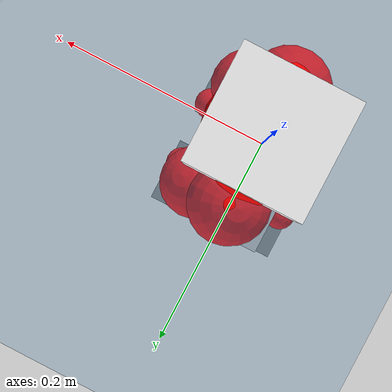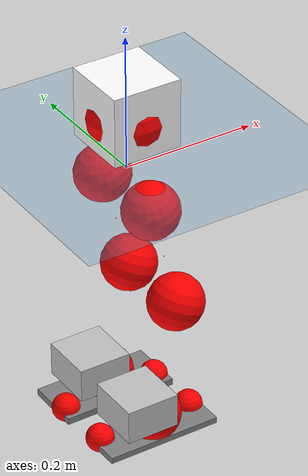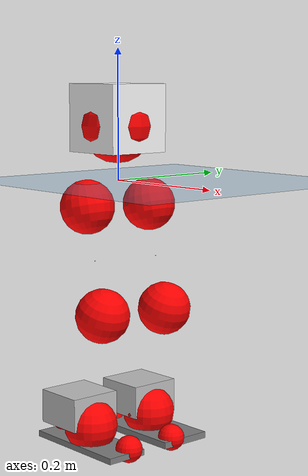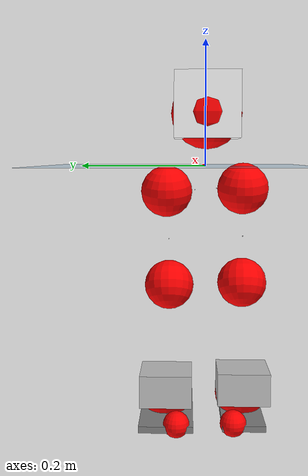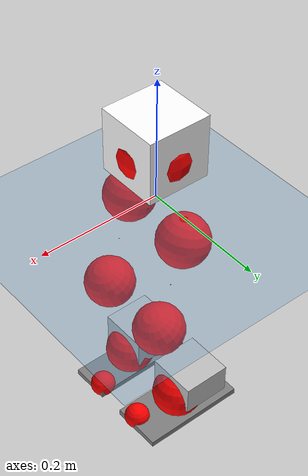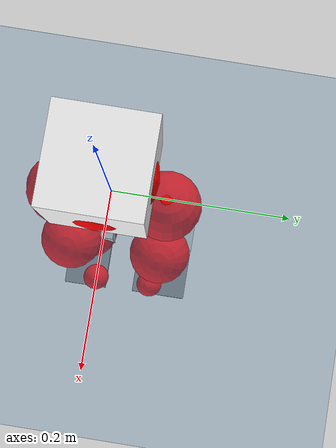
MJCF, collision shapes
<mujoco model="pi_12dof_release_v1">
  <compiler angle="radian" assetdir="assets" balanceinertia="true" inertiafromgeom="false"/>

  <option timestep="0.005" density="1.2" viscosity="2e-05"/>

  <size nkey="1"/>

  <visual>
    <quality shadowsize="8192"/>
    <map shadowclip="0.5"/>
  </visual>

  <default>
    <default class="/">
      <joint armature="0.01" damping="0.01" frictionloss="0.01"/>
      <geom contype="0" conaffinity="0" group="1" solref="-1000 -80"/>
      <site size="0.01 0.005 0.005" group="5"/>
      <general forcelimited="true" biastype="affine" gainprm="20" biasprm="0 -20 -0.5"/>
      <default class="foot">
        <geom size="0.0845 0.036 0.005" type="box" condim="6" group="4" priority="1" friction="0.9 0.2 0.2" solimp="0.015 1 0.005"/>
      </default>
      <default class="reward_collision_sphere">
        <geom group="5" rgba="1 0 0 1"/>
      </default>
    </default>
  </default>

  <asset>
    <texture type="skybox" colorspace="auto" name="//unnamed_texture_0" builtin="gradient" rgb1="0.95 0.95 0.95" rgb2="0.95 0.95 0.95" width="100" height="600"/>
    <texture type="2d" colorspace="auto" name="texplane" builtin="checker" rgb1="0.345 0.575 0.748" rgb2="0.345 0.575 0.748" markrgb="1 1 1" width="512" height="512"/>
    <material name="MatPlane" class="/" texture="texplane" texuniform="true" texrepeat="2 2" specular="0.9"/>
    <mesh name="baselink_1" class="/" file="baselink_1.STL"/>
    <mesh name="r_hip_pitch_link" class="/" file="r_hip_pitch_link.STL"/>
    <mesh name="r_hip_roll_link" class="/" file="r_hip_roll_link.STL"/>
    <mesh name="r_thigh_link" class="/" file="r_thigh_link.STL"/>
    <mesh name="r_calf_link" class="/" file="r_calf_link.STL"/>
    <mesh name="r_ankle_pitch_link" class="/" file="r_ankle_pitch_link.STL"/>
    <mesh name="r_ankle_roll_link" class="/" file="r_ankle_roll_link.STL"/>
    <mesh name="l_hip_pitch_link" class="/" file="l_hip_pitch_link.STL"/>
    <mesh name="l_hip_roll_link" class="/" file="l_hip_roll_link.STL"/>
    <mesh name="l_thigh_link" class="/" file="l_thigh_link.STL"/>
    <mesh name="l_calf_link" class="/" file="l_calf_link.STL"/>
    <mesh name="l_ankle_pitch_link" class="/" file="l_ankle_pitch_link.STL"/>
    <mesh name="l_ankle_roll_link" class="/" file="l_ankle_roll_link.STL"/>
  </asset>

  <worldbody>
    <geom name="floor" class="/" size="100 100 0.125" type="plane" group="0" material="MatPlane"/>
    <light name="toplight_shadow" class="/" pos="0 0 5" dir="0.0990148 0.0990148 -0.990148" type="directional" ambient="0.04 0.04 0.04" diffuse="0.55 0.55 0.55" specular="0.12 0.12 0.12"/>
    <light name="toplight_fill" class="/" pos="0 0 5" dir="0.0990148 0.0990148 -0.990148" type="directional" castshadow="false" ambient="0.04 0.04 0.04" diffuse="0.3 0.3 0.3" specular="0.08 0.08 0.08"/>
    <body name="trunk" pos="0.0002099 -0.00199309 0.000327364" quat="1 2.77627e-05 -7.99846e-06 8.41373e-06">
      <inertial pos="0.00160866 -0.00283969 0.0478792" quat="0.702432 0.0114128 0.0175816 0.711443" mass="2.36641" diaginertia="0.0159115 0.003237 0.00976398"/>
      <joint name="//unnamed_joint_0" type="free"/>
      <geom name="//unnamed_geom_1" class="/" type="mesh" density="0" rgba="1 1 1 1" mesh="baselink_1"/>
      <geom name="//unnamed_geom_2" class="/" size="0.0517644 0.0517644 0.0517644" pos="0 0 0.0949522" type="box" rgba="1 1 1 1"/>
      <geom name="//unnamed_geom_3" class="reward_collision_sphere" size="0.0569408" pos="0 0 0.0830832"/>
      <site name="imu" class="/" pos="0.00928119 0.00309757 -0.00992126" size="0.0103529"/>
      <camera name="track" class="/" pos="0 -1.63301 0" quat="0.707107 0.707107 0 0" mode="trackcom"/>
      <camera name="ego_camera" class="/" pos="0.0826842 0 0.213643" quat="-0.5 -0.5 0.5 0.5"/>
      <body name="r_hip_pitch_link" pos="0.000624047 -0.0159935 -0.0366028" quat="0.992282 -7.91371e-05 -0.123999 0.000713821">
        <inertial pos="0.000899927 -0.0453325 0.000692087" quat="-0.0193483 0.705596 -0.0286714 0.707769" mass="0.399473" diaginertia="0.000176536 3.44086e-05 0.000196596"/>
        <joint name="r_hip_pitch_joint" class="/" pos="0 0 0" axis="-0.00521983 -0.999975 0.00486319" stiffness="0.000616794" range="-1.75296 1.23811" armature="0.010419" damping="0.0135827" frictionloss="0.0108972"/>
        <geom name="//unnamed_geom_4" class="/" type="mesh" density="0" rgba="0.75294 0.75294 0.75294 1" mesh="r_hip_pitch_link"/>
        <geom name="//unnamed_geom_5" class="/" size="0.000517644 0.000517644 0.000517644" type="box" rgba="0.75294 0.75294 0.75294 1"/>
        <body name="r_hip_roll_link" pos="-0.000627526 -0.0430378 -0.000239482" quat="1 0.000122727 0.000101149 0.000866575">
          <inertial pos="0.000671865 0.000708601 -0.0729813" quat="0.698371 -0.0745078 -0.081167 0.707205" mass="0.431274" diaginertia="0.000549625 0.000101805 0.000308484"/>
          <joint name="r_hip_roll_joint" class="/" pos="0 0 0" axis="-0.999986 0.00306907 0.00431358" stiffness="0.00112507" range="-0.120034 0.541218" armature="0.00960676" damping="0.00924133" frictionloss="0.0100764"/>
          <geom name="//unnamed_geom_6" class="/" type="mesh" density="0" rgba="0.75294 0.75294 0.75294 1" mesh="r_hip_roll_link"/>
          <geom name="//unnamed_geom_7" class="/" size="0.000517644 0.000517644 0.000517644" type="box" rgba="0.75294 0.75294 0.75294 1"/>
          <geom name="//unnamed_geom_8" class="reward_collision_sphere" size="0.0414115"/>
          <body name="r_thigh_link" pos="-0.000346438 -0.00200298 -0.0820623" quat="1 0.000264297 -7.05444e-06 0.000279728">
            <inertial pos="0.00201235 0.000634005 -0.0589979" quat="0.737804 0.675015 -0.000198788 0.000275391" mass="0.124815" diaginertia="0.000197991 3.53758e-05 0.000131427"/>
            <joint name="r_thigh_joint" class="/" pos="0 0 0" axis="-0.00524786 0.000694712 -0.999986" range="-0.332258 0.598975" armature="0.010567" damping="0.00650384" frictionloss="0.0102079"/>
            <geom name="//unnamed_geom_9" class="/" type="mesh" density="0" rgba="0.75294 0.75294 0.75294 1" mesh="r_thigh_link"/>
            <geom name="//unnamed_geom_10" class="/" size="0.000517644 0.000517644 0.000517644" type="box" rgba="0.75294 0.75294 0.75294 1"/>
            <body name="r_calf_link" pos="-0.00157076 -0.00111624 -0.0834328" quat="0.94766 -0.000101746 0.319281 -6.07778e-06">
              <inertial pos="0.000107545 -0.00184049 -0.0838724" quat="0.999975 -0.00413263 0.00266264 0.00514574" mass="0.879388" diaginertia="0.005835 0.00123441 0.000424101"/>
              <joint name="r_calf_joint" class="/" pos="0 0 0" axis="-0.00100446 -0.999993 0.00361284" range="-1.59838 0.654548" armature="0.0109097" damping="0.0103046" frictionloss="0.0104176"/>
              <geom name="//unnamed_geom_11" class="/" type="mesh" density="0" rgba="0.75294 0.75294 0.75294 1" mesh="r_calf_link"/>
              <geom name="//unnamed_geom_12" class="/" size="0.000517644 0.000517644 0.000517644" type="box" rgba="0.75294 0.75294 0.75294 1"/>
              <geom name="//unnamed_geom_13" class="reward_collision_sphere" size="0.0414115"/>
              <body name="r_ankle_pitch_link" pos="0.00318031 0.00299324 -0.165805" quat="0.980052 7.02012e-05 -0.198742 0.000109371">
                <inertial pos="0.00498085 0.000326861 -0.000619632" quat="0.00396997 0.707598 0.0017013 0.706602" mass="0.204781" diaginertia="0.000518064 8.27831e-05 0.000292563"/>
                <joint name="r_ankle_pitch_joint" class="/" pos="0 0 0" axis="0.00486181 -0.999899 -0.013335" range="-1.29743 0.553741" armature="0.0106061" damping="0.0156078" frictionloss="0.0107383"/>
                <geom name="//unnamed_geom_14" class="/" type="mesh" density="0" rgba="0.75294 0.75294 0.75294 1" mesh="r_ankle_pitch_link"/>
                <geom name="//unnamed_geom_15" class="/" size="0.0403762 0.0414115 0.0258822" type="box" rgba="0.75294 0.75294 0.75294 1"/>
                <body name="r_ankle_roll_link" pos="0.0815891 0.00152367 -0.00120031" quat="0.999999 -0.00015704 0.000856813 0.000879043">
                  <inertial pos="-0.0268374 -0.00032259 -0.0157946" quat="0.557864 0.43491 0.433375 0.558415" mass="0.579014" diaginertia="0.00182299 0.000375473 0.000660093"/>
                  <joint name="r_ankle_roll_joint" class="/" pos="0 0 0" axis="-1 0.000866935 4.8664e-05" range="-0.203515 0.14513" armature="0.010196" damping="0.0125715" frictionloss="0.0102303"/>
                  <geom name="//unnamed_geom_16" class="/" type="mesh" density="0" rgba="0.75294 0.75294 0.75294 1" mesh="r_ankle_roll_link"/>
                  <geom name="//unnamed_geom_17" class="/" type="mesh" rgba="0.75294 0.75294 0.75294 1" mesh="r_ankle_roll_link"/>
                  <geom name="right_foot" class="foot" size="0.0880058 0.0336527 0.00463166" pos="-0.0562252 0 -0.0522237"/>
                  <geom name="//unnamed_geom_19" class="reward_collision_sphere" size="0.0414115" pos="-0.0551228 0 -0.0237381"/>
                  <geom name="//unnamed_geom_20" class="reward_collision_sphere" size="0.0207057" pos="0.0165368 0.0163301 -0.0474761"/>
                  <geom name="//unnamed_geom_21" class="reward_collision_sphere" size="0.0207057" pos="-0.132295 0.0163301 -0.0474761"/>
                  <site name="right_foot" class="foot" pos="-0.0562252 0 -0.0522237" size="0.0103529"/>
                </body>
              </body>
            </body>
          </body>
        </body>
      </body>
      <body name="l_hip_pitch_link" pos="-9.93331e-05 0.0184369 -0.038984" quat="0.992239 -0.000301168 -0.124345 9.62601e-05">
        <inertial pos="0.00070173 0.0416564 -0.000266234" quat="-0.0337175 0.705679 0.0313955 0.707032" mass="0.424508" diaginertia="0.00020819 3.79272e-05 0.000236913"/>
        <joint name="l_hip_pitch_joint" class="/" pos="0 0 0" axis="0.000231568 1 -0.000448892" stiffness="0.00697678" range="-1.24669 1.75661" armature="0.00999603" damping="0" frictionloss="0.0110513"/>
        <geom name="//unnamed_geom_22" class="/" type="mesh" density="0" rgba="0.75294 0.75294 0.75294 1" mesh="l_hip_pitch_link"/>
        <geom name="//unnamed_geom_23" class="/" size="0.000517644 0.000517644 0.000517644" type="box" rgba="0.75294 0.75294 0.75294 1"/>
        <body name="l_hip_roll_link" pos="-0.000456293 0.0457754 -0.00249447" quat="1 -5.06206e-05 -0.000163298 0.000204199">
          <inertial pos="-0.00176991 -0.000302933 -0.0750645" quat="0.696837 -0.0759162 -0.0771031 0.709021" mass="0.441329" diaginertia="0.000544932 9.92873e-05 0.000298764"/>
          <joint name="l_hip_roll_joint" class="/" pos="0 0 0" axis="-0.999969 0.00778851 -0.00122021" range="-0.553765 0.121685" armature="0.0114697" damping="0.00366979" frictionloss="0.00998197"/>
          <geom name="//unnamed_geom_24" class="/" type="mesh" density="0" rgba="0.75294 0.75294 0.75294 1" mesh="l_hip_roll_link"/>
          <geom name="//unnamed_geom_25" class="/" size="0.000517644 0.000517644 0.000517644" type="box" rgba="0.75294 0.75294 0.75294 1"/>
          <geom name="//unnamed_geom_26" class="reward_collision_sphere" size="0.0414115"/>
          <body name="l_thigh_link" pos="-0.000913831 -0.00295663 -0.0820339" quat="1 0.000161787 -0.000387736 0.000168307">
            <inertial pos="7.20245e-05 -0.00141529 -0.0552047" quat="0.674551 0.738224 0.00238983 0.000854581" mass="0.127925" diaginertia="0.000212041 3.44862e-05 0.00013821"/>
            <joint name="l_thigh_joint" class="/" pos="0 0 0" axis="0.00102111 -0.000821684 -0.999999" stiffness="0.000541418" range="-0.605719 0.301428" armature="0.00979424" damping="0.00620657" frictionloss="0.0102354"/>
            <geom name="//unnamed_geom_27" class="/" type="mesh" density="0" rgba="0.75294 0.75294 0.75294 1" mesh="l_thigh_link"/>
            <geom name="//unnamed_geom_28" class="/" size="0.000517644 0.000517644 0.000517644" type="box" rgba="0.75294 0.75294 0.75294 1"/>
            <body name="l_calf_link" pos="5.02641e-05 -2.5891e-05 -0.0837207" quat="0.947908 -0.000629812 0.318543 -0.000521403">
              <inertial pos="-0.000652143 0.00479657 -0.0848755" quat="0.999973 0.00129072 -0.00502753 0.00510787" mass="0.91622" diaginertia="0.00591679 0.0012689 0.000428063"/>
              <joint name="l_calf_joint" class="/" pos="0 0 0" axis="-0.00351456 0.999978 -0.0056293" range="-0.66975 1.6646" armature="0.00980538" damping="0.00302564" frictionloss="0.00991784"/>
              <geom name="//unnamed_geom_29" class="/" type="mesh" density="0" rgba="0.75294 0.75294 0.75294 1" mesh="l_calf_link"/>
              <geom name="//unnamed_geom_30" class="/" size="0.000517644 0.000517644 0.000517644" type="box" rgba="0.75294 0.75294 0.75294 1"/>
              <geom name="//unnamed_geom_31" class="reward_collision_sphere" size="0.0414115"/>
              <body name="l_ankle_pitch_link" pos="-0.000243431 0.00322372 -0.166443" quat="0.979988 -0.000269021 -0.199054 0.00121761">
                <inertial pos="0.00526221 -0.00326748 0.000453482" quat="-0.00145361 0.709236 0.00588039 0.704945" mass="0.194463" diaginertia="0.000498142 8.00073e-05 0.000279325"/>
                <joint name="l_ankle_pitch_joint" class="/" pos="0 0 0" axis="0.000249979 1 0.000737841" range="-0.551012 1.32928" armature="0.0104367" damping="0.00264854" frictionloss="0.0103658"/>
                <geom name="//unnamed_geom_32" class="/" type="mesh" density="0" rgba="0.75294 0.75294 0.75294 1" mesh="l_ankle_pitch_link"/>
                <geom name="//unnamed_geom_33" class="/" size="0.0403762 0.0414115 0.0258822" type="box" rgba="0.75294 0.75294 0.75294 1"/>
                <body name="l_ankle_roll_link" pos="0.0805268 -0.000609558 0.00115037" quat="1 5.30508e-06 1.17675e-06 6.21222e-07">
                  <inertial pos="-0.024033 -0.000597987 -0.0162664" quat="0.562524 0.429771 0.434013 0.557222" mass="0.570125" diaginertia="0.00189758 0.000378084 0.000657999"/>
                  <joint name="l_ankle_roll_joint" class="/" pos="0 0 0" axis="-0.999908 -0.012296 0.00580138" range="-0.0995439 0.116563" armature="0.0116475" damping="0.0234816" frictionloss="0.00911961"/>
                  <geom name="//unnamed_geom_34" class="/" type="mesh" density="0" rgba="0.75294 0.75294 0.75294 1" mesh="l_ankle_roll_link"/>
                  <geom name="//unnamed_geom_35" class="/" type="mesh" rgba="0.75294 0.75294 0.75294 1" mesh="l_ankle_roll_link"/>
                  <geom name="left_foot" class="foot" size="0.0882047 0.0425774 0.00518906" pos="-0.0562252 0 -0.0522237"/>
                  <geom name="//unnamed_geom_37" class="reward_collision_sphere" size="0.0414115" pos="-0.0551228 0 -0.0237381"/>
                  <geom name="//unnamed_geom_38" class="reward_collision_sphere" size="0.0207057" pos="0.0165368 -0.0163301 -0.0474761"/>
                  <geom name="//unnamed_geom_39" class="reward_collision_sphere" size="0.0207057" pos="-0.132295 -0.0163301 -0.0474761"/>
                  <site name="left_foot" class="foot" pos="-0.0562252 0 -0.0522237" size="0.0103529"/>
                </body>
              </body>
            </body>
          </body>
        </body>
      </body>
    </body>
  </worldbody>

  <contact>
    <pair class="/" geom1="floor" geom2="right_foot" name="//unnamed_contact_1"/>
    <pair class="/" geom1="floor" geom2="left_foot" name="//unnamed_contact_0"/>
  </contact>

  <actuator>
    <general name="r_hip_pitch_joint" class="/" joint="r_hip_pitch_joint" forcerange="-22.6411 22.6411" gainprm="20.3491" biasprm="0 -20.3491 -0.524967"/>
    <general name="r_hip_roll_joint" class="/" joint="r_hip_roll_joint" forcerange="-21.9327 21.9327" gainprm="20.3491" biasprm="0 -20.3491 -0.524967"/>
    <general name="r_thigh_joint" class="/" joint="r_thigh_joint" forcerange="-22.9716 22.9716" gainprm="20.3491" biasprm="0 -20.3491 -0.524967"/>
    <general name="r_calf_joint" class="/" joint="r_calf_joint" forcerange="-19.6806 19.6806" gainprm="20.3491" biasprm="0 -20.3491 -0.524967"/>
    <general name="r_ankle_pitch_joint" class="/" joint="r_ankle_pitch_joint" forcerange="-23.873 23.873" gainprm="20.3491" biasprm="0 -20.3491 -0.524967"/>
    <general name="r_ankle_roll_joint" class="/" joint="r_ankle_roll_joint" forcerange="-23.8837 23.8837" gainprm="20.3491" biasprm="0 -20.3491 -0.524967"/>
    <general name="l_hip_pitch_joint" class="/" joint="l_hip_pitch_joint" forcerange="-23.893 23.893" gainprm="20.3491" biasprm="0 -20.3491 -0.524967"/>
    <general name="l_hip_roll_joint" class="/" joint="l_hip_roll_joint" forcerange="-20.6457 20.6457" gainprm="20.3491" biasprm="0 -20.3491 -0.524967"/>
    <general name="l_thigh_joint" class="/" joint="l_thigh_joint" forcerange="-22.5717 22.5717" gainprm="20.3491" biasprm="0 -20.3491 -0.524967"/>
    <general name="l_calf_joint" class="/" joint="l_calf_joint" forcerange="-23.8813 23.8813" gainprm="20.3491" biasprm="0 -20.3491 -0.524967"/>
    <general name="l_ankle_pitch_joint" class="/" joint="l_ankle_pitch_joint" forcerange="-23.8752 23.8752" gainprm="20.3491" biasprm="0 -20.3491 -0.524967"/>
    <general name="l_ankle_roll_joint" class="/" joint="l_ankle_roll_joint" forcerange="-22.7635 22.7635" gainprm="20.3491" biasprm="0 -20.3491 -0.524967"/>
  </actuator>

  <sensor>
    <gyro site="imu" name="imu_angular_velocity"/>
    <velocimeter site="imu" name="imu_linear_velocity"/>
    <framelinvel objtype="site" objname="left_foot" name="left_foot_global_linear_velocity"/>
    <framelinvel objtype="site" objname="right_foot" name="right_foot_global_linear_velocity"/>
  </sensor>

  <keyframe>
    <key name="home" qpos="0 0 0.291 1 0 0 0 0.4 0 0 -0.8 0.4 0 -0.4 0 0 0.8 -0.4 0"/>
  </keyframe>
</mujoco>
